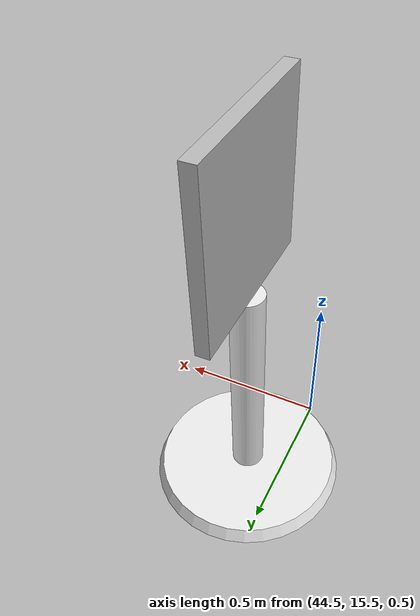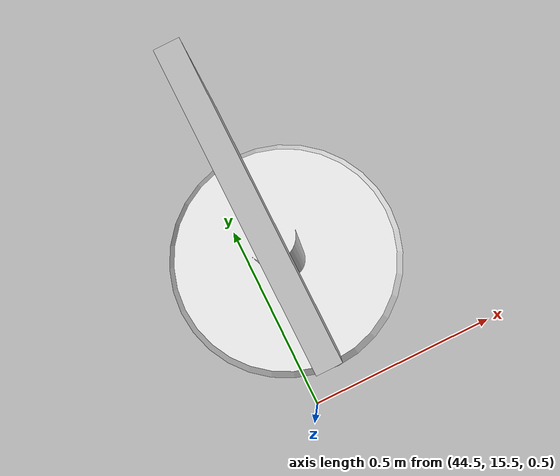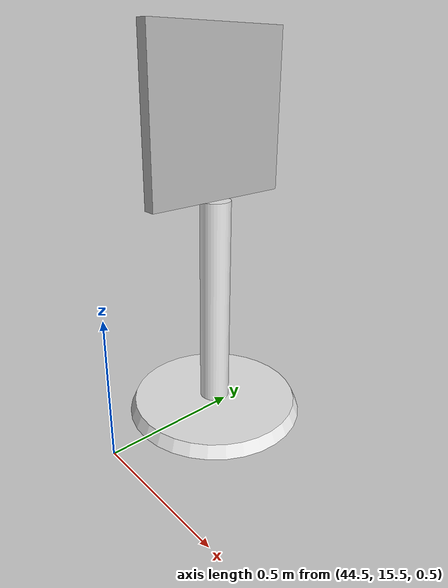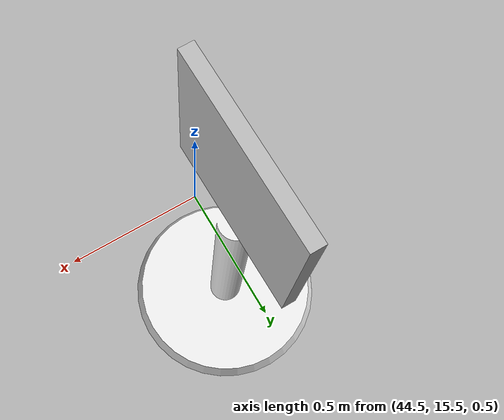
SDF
<sdf version="1.7">
 <world name="default">
  <model name="sign_board_park_yeri">
   <link name="link_0">
    <inertial>
     <mass>1</mass>
     <inertia>
      <ixx>0.166667</ixx>
      <ixy>0</ixy>
      <ixz>0</ixz>
      <iyy>0.166667</iyy>
      <iyz>0</iyz>
      <izz>0.166667</izz>
     </inertia>
    </inertial>
    <visual name="visual">
     <geometry>
      <mesh>
       <uri>/home/davut/otonomus_ws/src/self_driving_car_pkg/models/sign_board_park_yeri/meshes/sign_stand.obj</uri>
       <scale>0.25 0.25 0.25</scale>
      </mesh>
     </geometry>
     <material>
      <lighting>1</lighting>
      <script><uri>file://media/materials/scripts/gazebo.material</uri><name>Gazebo/White</name></script>
      <shader type="pixel"/>
      <emissive>0 0 0 1</emissive>
     </material>
    </visual>
    <collision name="collision">
     <geometry>
      <mesh>
       <uri>/home/davut/otonomus_ws/src/self_driving_car_pkg/models/sign_board_park_yeri/meshes/sign_stand.obj</uri>
       <scale>0.25 0.25 0.25</scale>
      </mesh>
     </geometry>
     <surface>
      <friction>
       <ode><mu>1</mu><mu2>1</mu2><fdir1>0 0 0</fdir1><slip1>0</slip1><slip2>0</slip2></ode>
       <torsional>
        <coefficient>1</coefficient>
        <patch_radius>0</patch_radius>
        <surface_radius>0</surface_radius>
        <use_patch_radius>1</use_patch_radius>
        <ode><slip>0</slip></ode>
       </torsional>
      </friction>
      <bounce><restitution_coefficient>0</restitution_coefficient><threshold>1e+06</threshold></bounce>
      <contact>
       <collide_without_contact>0</collide_without_contact>
       <collide_without_contact_bitmask>1</collide_without_contact_bitmask>
       <collide_bitmask>1</collide_bitmask>
       <ode>
        <soft_cfm>0</soft_cfm>
        <soft_erp>0.2</soft_erp>
        <kp>1e+13</kp>
        <kd>1</kd>
        <max_vel>0.01</max_vel>
        <min_depth>0</min_depth>
       </ode>
       <bullet>
        <split_impulse>1</split_impulse>
        <split_impulse_penetration_threshold>-0.01</split_impulse_penetration_threshold>
        <soft_cfm>0</soft_cfm>
        <soft_erp>0.2</soft_erp>
        <kp>1e+13</kp>
        <kd>1</kd>
       </bullet>
      </contact>
     </surface>
    </collision>
   </link>
   <link name="link_1">
    <inertial>
     <mass>1</mass>
     <inertia>
      <ixx>0.166667</ixx>
      <ixy>0</ixy>
      <ixz>0</ixz>
      <iyy>0.166667</iyy>
      <iyz>0</iyz>
      <izz>0.166667</izz>
     </inertia>
    </inertial>
    <visual name="visual">
     <geometry>
      <mesh>
       <uri>/home/davut/otonomus_ws/src/self_driving_car_pkg/models/sign_board_park_yeri/meshes/sign_board.obj</uri>
       <scale>0.25 0.25 0.25</scale>
      </mesh>
     </geometry>
     <material>
      <script>
       <uri>/home/davut/otonomus_ws/src/self_driving_car_pkg/models/sign_board_park_yeri/materials/scripts</uri>
       <uri>/home/davut/otonomus_ws/src/self_driving_car_pkg/models/sign_board_park_yeri/materials/textures</uri>
       <name>sign_board_park_yeri/Diffuse</name>
      </script>
     </material>
    </visual>
    <collision name="collision">
     <geometry>
      <mesh>
       <uri>/home/davut/otonomus_ws/src/self_driving_car_pkg/models/sign_board_park_yeri/meshes/sign_board.obj</uri>
       <scale>0.25 0.25 0.25</scale>
      </mesh>
     </geometry>
     <surface>
      <friction>
       <ode><mu>1</mu><mu2>1</mu2><fdir1>0 0 0</fdir1><slip1>0</slip1><slip2>0</slip2></ode>
       <torsional>
        <coefficient>1</coefficient>
        <patch_radius>0</patch_radius>
        <surface_radius>0</surface_radius>
        <use_patch_radius>1</use_patch_radius>
        <ode><slip>0</slip></ode>
       </torsional>
      </friction>
      <bounce><restitution_coefficient>0</restitution_coefficient><threshold>1e+06</threshold></bounce>
      <contact>
       <collide_without_contact>0</collide_without_contact>
       <collide_without_contact_bitmask>1</collide_without_contact_bitmask>
       <collide_bitmask>1</collide_bitmask>
       <ode>
        <soft_cfm>0</soft_cfm>
        <soft_erp>0.2</soft_erp>
        <kp>1e+13</kp>
        <kd>1</kd>
        <max_vel>0.01</max_vel>
        <min_depth>0</min_depth>
       </ode>
       <bullet>
        <split_impulse>1</split_impulse>
        <split_impulse_penetration_threshold>-0.01</split_impulse_penetration_threshold>
        <soft_cfm>0</soft_cfm>
        <soft_erp>0.2</soft_erp>
        <kp>1e+13</kp>
        <kd>1</kd>
       </bullet>
      </contact>
     </surface>
    </collision>
   </link>
   <joint name="link_0_JOINT_0" type="fixed">
    <parent>link_0</parent>
    <child>link_1</child>
    <physics>
     <ode><limit><cfm>0</cfm><erp>0.2</erp></limit><suspension><cfm>0</cfm><erp>0.2</erp></suspension></ode>
    </physics>
   </joint>
   <static>1</static>
   <pose>44.593 15.868 0.614254 1.57686 -0.000182 -3.13306</pose>
  </model>
 </world>
</sdf>
